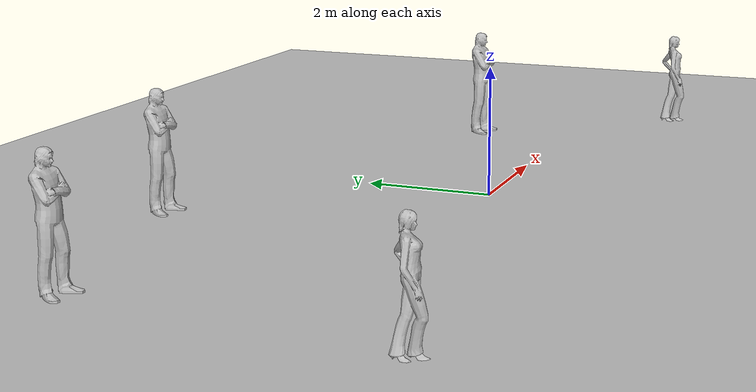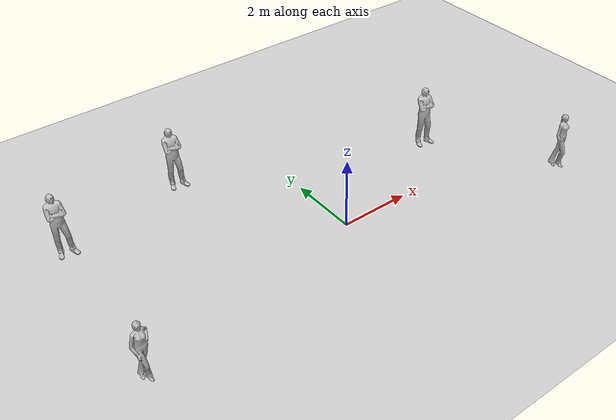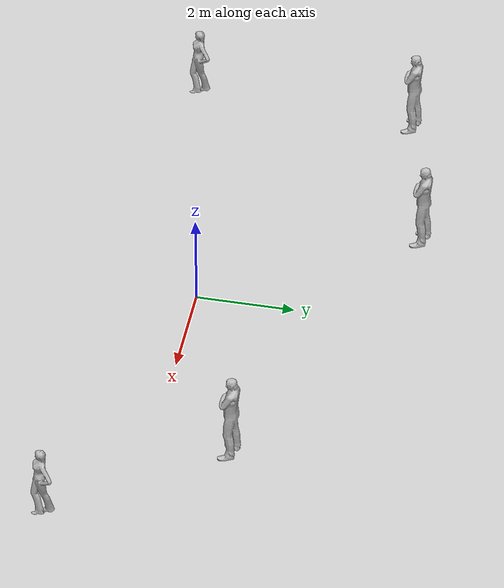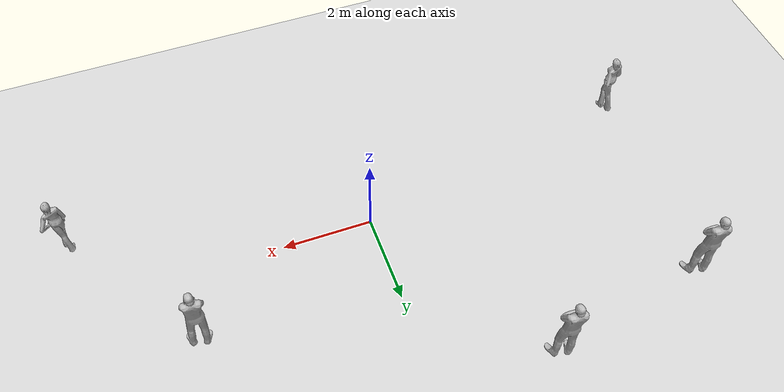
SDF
<sdf version="1.7">
 <world name="default">
  <light name="sun" type="directional">
   <pose>0 0 10 0 -0 0</pose>
   <diffuse>0.8 0.8 0.8 1</diffuse>
   <specular>0.2 0.2 0.2 1</specular>
   <attenuation>
    <range>1000</range>
    <constant>0.9</constant>
    <linear>0.01</linear>
    <quadratic>0.001</quadratic>
   </attenuation>
   <direction>-0.5 0.1 -0.9</direction>
   <spot><inner_angle>0</inner_angle><outer_angle>0</outer_angle><falloff>0</falloff></spot>
  </light>
  <model name="ground_plane">
   <static>1</static>
   <link name="link">
    <collision name="collision">
     <geometry><plane><normal>0 0 1</normal><size>100 100</size></plane></geometry>
     <surface>
      <contact><collide_bitmask>65535</collide_bitmask></contact>
      <friction><ode><mu>100</mu><mu2>50</mu2></ode></friction>
     </surface>
    </collision>
    <visual name="visual">
     <cast_shadows>0</cast_shadows>
     <geometry><plane><normal>0 0 1</normal><size>100 100</size></plane></geometry>
     <material>
      <script><uri>file://media/materials/scripts/gazebo.material</uri><name>Gazebo/Grey</name></script>
     </material>
    </visual>
   </link>
  </model>
  <physics type="ode">
   <real_time_update_rate>1000</real_time_update_rate>
   <max_step_size>0.001</max_step_size>
   <real_time_factor>1</real_time_factor>
   <ode>
    <solver>
     <type>quick</type>
     <iters>150</iters>
     <precon_iters>0</precon_iters>
     <sor>1.4</sor>
     <use_dynamic_moi_rescaling>1</use_dynamic_moi_rescaling>
    </solver>
    <constraints>
     <cfm>1e-05</cfm>
     <erp>0.2</erp>
     <contact_max_correcting_vel>2000</contact_max_correcting_vel>
     <contact_surface_layer>0.01</contact_surface_layer>
    </constraints>
   </ode>
  </physics>
  <scene><ambient>0.4 0.4 0.4 1</ambient><background>0.7 0.7 0.7 1</background><shadows>1</shadows></scene>
  <gravity>0 0 -9.8</gravity>
  <magnetic_field>6e-06 2.3e-05 -4.2e-05</magnetic_field>
  <atmosphere type="adiabatic"/>
  <spherical_coordinates>
   <surface_model>EARTH_WGS84</surface_model>
   <latitude_deg>0</latitude_deg>
   <longitude_deg>0</longitude_deg>
   <elevation>0</elevation>
   <heading_deg>0</heading_deg>
  </spherical_coordinates>
  <model name="citizen_extras_male_03">
   <link name="link">
    <inertial>
     <mass>20</mass>
     <inertia><ixx>0</ixx><ixy>0</ixy><ixz>0</ixz><iyy>0</iyy><iyz>0</iyz><izz>0</izz></inertia>
    </inertial>
    <collision name="collision">
     <geometry><mesh><uri>model://citizen_extras_male_03/meshes/mesh.dae</uri></mesh></geometry>
    </collision>
    <visual name="visual">
     <geometry><mesh><uri>model://citizen_extras_male_03/meshes/mesh.dae</uri></mesh></geometry>
    </visual>
   </link>
   <pose>4.2065 1.47644 0.010908 0.012561 0.002322 0.000125</pose>
  </model>
  <model name="citizen_extras_female_03">
   <link name="link">
    <inertial>
     <mass>20</mass>
     <inertia><ixx>0</ixx><ixy>0</ixy><ixz>0</ixz><iyy>0</iyy><iyz>0</iyz><izz>0</izz></inertia>
    </inertial>
    <collision name="collision">
     <geometry><mesh><uri>model://citizen_extras_female_03/meshes/mesh.dae</uri></mesh></geometry>
    </collision>
    <visual name="visual">
     <geometry><mesh><uri>model://citizen_extras_female_03/meshes/mesh.dae</uri></mesh></geometry>
    </visual>
   </link>
   <pose>6.37685 -1.62864 -0.003501 0.011371 0.012656 5.2e-05</pose>
  </model>
  <model name="citizen_extras_male_03_0">
   <link name="link">
    <inertial>
     <mass>20</mass>
     <inertia><ixx>0</ixx><ixy>0</ixy><ixz>0</ixz><iyy>0</iyy><iyz>0</iyz><izz>0</izz></inertia>
    </inertial>
    <collision name="collision">
     <geometry><mesh><uri>model://citizen_extras_male_03/meshes/mesh.dae</uri></mesh></geometry>
    </collision>
    <visual name="visual">
     <geometry><mesh><uri>model://citizen_extras_male_03/meshes/mesh.dae</uri></mesh></geometry>
    </visual>
   </link>
   <pose>-2.54317 4.12541 0.010906 0.012562 0.002309 0.000125</pose>
  </model>
  <model name="citizen_extras_male_03_1">
   <link name="link">
    <inertial>
     <mass>20</mass>
     <inertia><ixx>0</ixx><ixy>0</ixy><ixz>0</ixz><iyy>0</iyy><iyz>0</iyz><izz>0</izz></inertia>
    </inertial>
    <collision name="collision">
     <geometry><mesh><uri>model://citizen_extras_male_03/meshes/mesh.dae</uri></mesh></geometry>
    </collision>
    <visual name="visual">
     <geometry><mesh><uri>model://citizen_extras_male_03/meshes/mesh.dae</uri></mesh></geometry>
    </visual>
   </link>
   <pose>-6.12423 3.37956 0.010906 0.012561 0.002304 0.000125</pose>
  </model>
  <model name="citizen_extras_female_03_0">
   <link name="link">
    <inertial>
     <mass>20</mass>
     <inertia><ixx>0</ixx><ixy>0</ixy><ixz>0</ixz><iyy>0</iyy><iyz>0</iyz><izz>0</izz></inertia>
    </inertial>
    <collision name="collision">
     <geometry><mesh><uri>model://citizen_extras_female_03/meshes/mesh.dae</uri></mesh></geometry>
    </collision>
    <visual name="visual">
     <geometry><mesh><uri>model://citizen_extras_female_03/meshes/mesh.dae</uri></mesh></geometry>
    </visual>
   </link>
   <pose>-6.49114 -1.27947 -0.003502 0.011375 0.012681 5.1e-05</pose>
  </model>
 </world>
</sdf>
